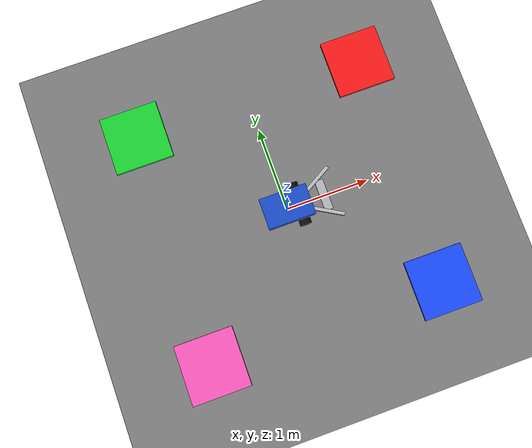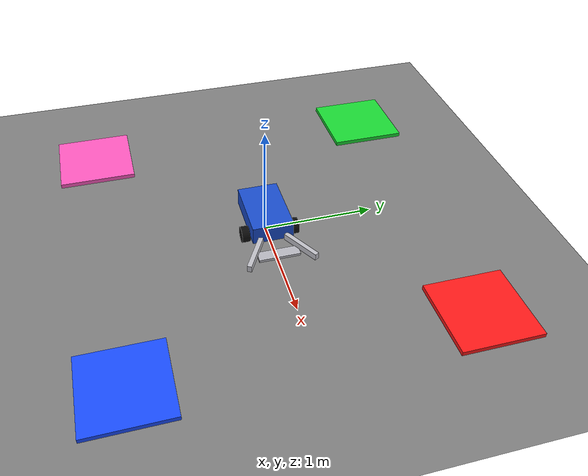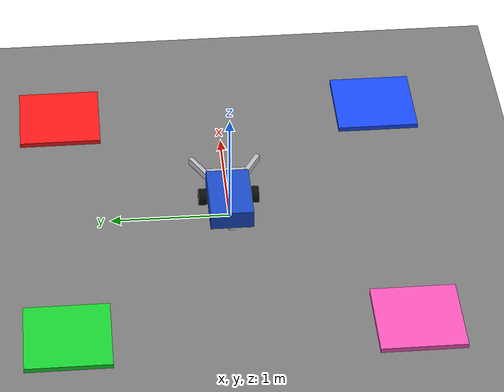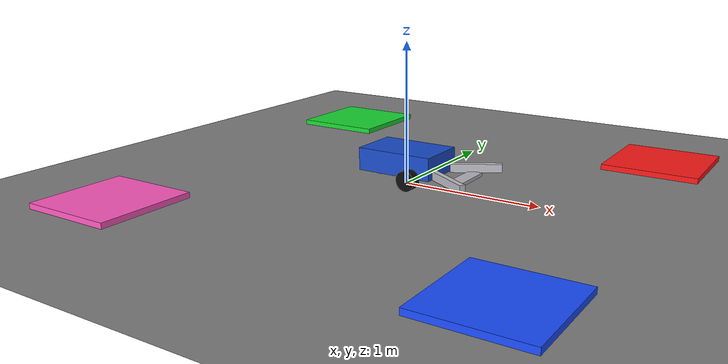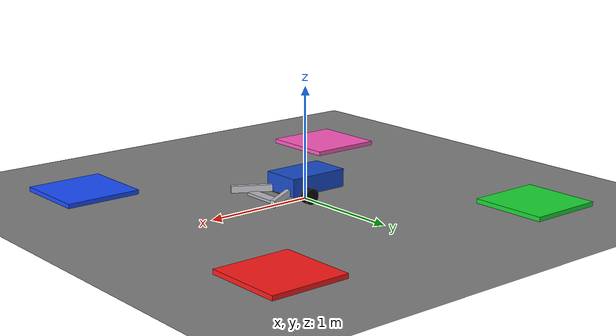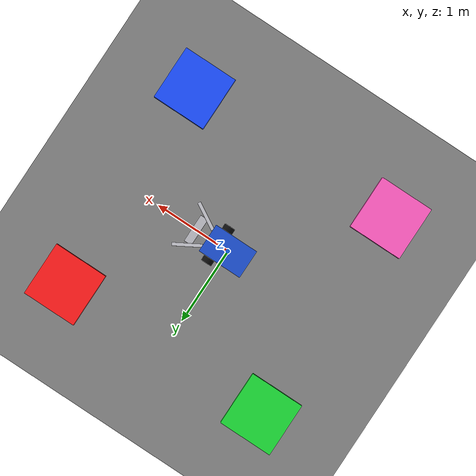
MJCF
<mujoco model="two_wheel_camera_bot_platform_world">
  <compiler angle="degree" coordinate="local"/>
  <option timestep="0.005" gravity="0 0 -9.81"/>

  <visual>
    <global offwidth="1280" offheight="960"/>
    <rgba haze="0 0 0 0"/>
  </visual>

  <asset>
    <texture name="grid" type="2d" builtin="checker"
             width="512" height="512"
             rgb1="0.2 0.2 0.2" rgb2="0.8 0.8 0.8"/>
    <material name="gridmat" texture="grid" texrepeat="8 8" reflectance="0.2"/>
  </asset>

  <worldbody>
    <light pos="0 0 5.5" dir="0 0 -1" diffuse="0.32 0.32 0.32" ambient="0.12 0.12 0.12"/>
    <light pos="5 -4 6" dir="-0.9 0.2 -1" diffuse="0.2 0.2 0.2"/>
    <light pos="-5 4 6" dir="0.9 -0.2 -1" diffuse="0.2 0.2 0.2"/>
    <light pos="5 4 6" dir="-0.7 -0.7 -1" diffuse="0.16 0.16 0.16"/>
    <light pos="-5 -4 6" dir="0.7 0.7 -1" diffuse="0.16 0.16 0.16"/>

    <geom name="floor" type="plane" size="20 20 0.1"
          material="gridmat" friction="1.2 0.1 0.1"/>

    <!-- Top-down omni camera covering robot + all platforms -->
    <camera name="omniscient_cam"
            pos="0 0 8.5"
            xyaxes="1 0 0 0 1 0"
            fovy="70"/>

    <include file="world/robot.xml"/>

    <!-- Platforms around the robot -->
    <geom name="platform_red_45" type="box"
          pos="1.4 1.4 0.02"
          size="0.35 0.35 0.02"
          rgba="1 0.1 0.1 1"/>
    <geom name="platform_blue_m45" type="box"
          pos="1.4 -1.4 0.02"
          size="0.35 0.35 0.02"
          rgba="0.1 0.3 1 1"/>
    <geom name="platform_green_135" type="box"
          pos="-1.4 1.4 0.02"
          size="0.35 0.35 0.02"
          rgba="0.1 0.85 0.2 1"/>
    <geom name="platform_pink_m135" type="box"
          pos="-1.4 -1.4 0.02"
          size="0.35 0.35 0.02"
          rgba="1 0.35 0.75 1"/>
  </worldbody>

  <actuator>
    <motor name="left_motor" joint="left_wheel_joint" gear="1" ctrllimited="true" ctrlrange="-5 5"/>
    <motor name="right_motor" joint="right_wheel_joint" gear="1" ctrllimited="true" ctrlrange="-5 5"/>
  </actuator>
</mujoco>

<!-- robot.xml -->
<mujocoinclude>
  <body name="bot" pos="0 0 0.18">
    <freejoint/>

    <geom name="chassis" type="box" size="0.28 0.18 0.08"
          mass="4.0" rgba="0.1 0.3 0.8 1"/>

    <!-- Simple V-plow on the robot front -->
    <geom name="plow_left" type="box"
          pos="0.44 0.20 -0.05"
          size="0.18 0.02 0.03"
          euler="0 0 30"
          mass="0.08"
          rgba="0.75 0.75 0.78 1"/>
    <geom name="plow_right" type="box"
          pos="0.44 -0.20 -0.05"
          size="0.18 0.02 0.03"
          euler="0 0 -30"
          mass="0.08"
          rgba="0.75 0.75 0.78 1"/>

    <!-- Low front bumper prevents spheres from rolling under and lifting the chassis -->
    <geom name="front_bumper" type="box"
          pos="0.45 0 -0.085"
          size="0.05 0.18 0.012"
          mass="0.05"
          rgba="0.72 0.72 0.75 1"/>

    <!-- Robot POV camera -->
    <camera name="front_cam"
            pos="0.16 0 0.24"
            xyaxes="0 -1 0 0.22 0 0.98"
            fovy="90"/>

    <body name="left_wheel" pos="0.14 0.22 -0.08">
      <joint name="left_wheel_joint" type="hinge"
             axis="0 1 0"
             damping="0.01"/>
      <geom name="left_wheel_geom" type="cylinder"
            size="0.07 0.035"
            mass="0.4"
            rgba="0.05 0.05 0.05 1"
            friction="2.0 0.1 0.1"
            euler="90 0 0"/>
    </body>

    <body name="right_wheel" pos="0.14 -0.22 -0.08">
      <joint name="right_wheel_joint" type="hinge"
             axis="0 1 0"
             damping="0.01"/>
      <geom name="right_wheel_geom" type="cylinder"
            size="0.07 0.035"
            mass="0.4"
            rgba="0.05 0.05 0.05 1"
            friction="2.0 0.1 0.1"
            euler="90 0 0"/>
    </body>

    <body name="rear_coaster" pos="-0.22 0 -0.10">
      <geom name="coaster_ball" type="sphere"
            size="0.045"
            mass="0.15"
            rgba="0.8 0.8 0.8 1"
            friction="0.3 0.02 0.02"/>
    </body>
  </body>
</mujocoinclude>
